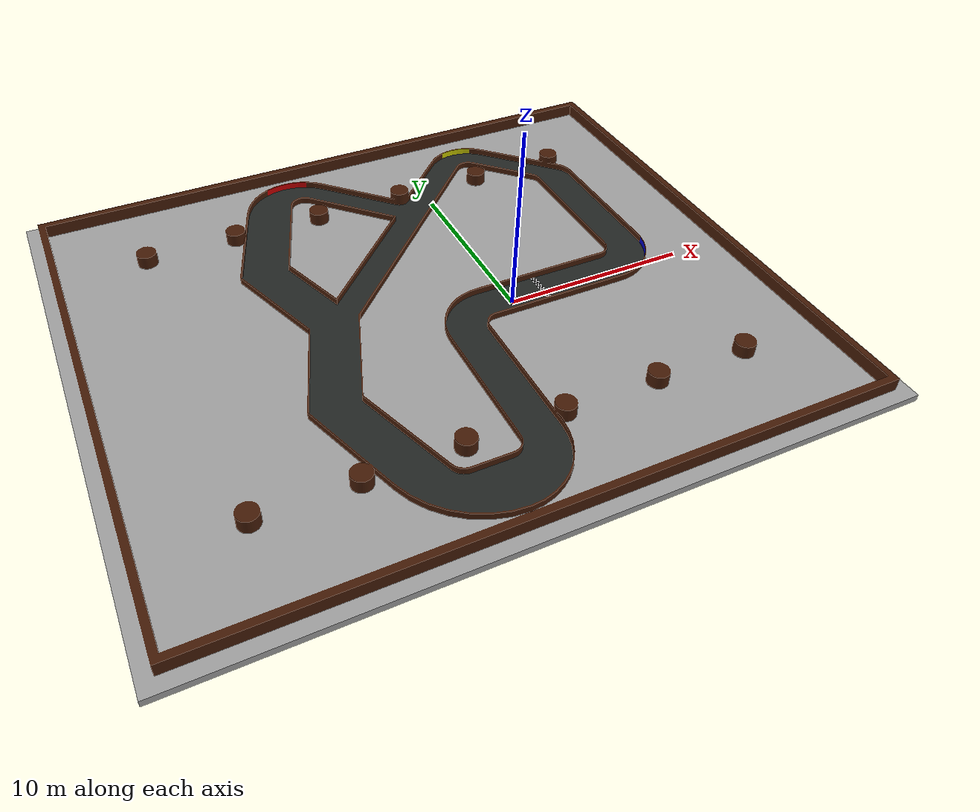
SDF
<?xml version="1.0"?>
<sdf version="1.4">
<world name="racecar_walker">

  <scene>
    <ambient>0.5 0.5 0.5 1.0</ambient>
    <shadows>0</shadows>
  </scene>

  <light type="point" name="Light 1">
              <pose>0 0 15 0 0 0</pose>
              <diffuse>.9 .9 .9 1</diffuse>
              <specular>.1 .1 .1 1</specular>
              <attenuation>
              <constant>0.5</constant>
              <linear>0.01</linear>
              <quadratic>0.0</quadratic>
              <range>50</range>
              </attenuation>
              <direction>0 0 -1</direction>
              <cast_shadows>false</cast_shadows>
          </light>

  <include>
    <uri>model://racecar_gazebo/models/walker_racecourse</uri>
    <pose>-4 2 -.3583 0 0 -1.57</pose>
    <name>walker_racecourse</name>
  </include>

</world>
</sdf>

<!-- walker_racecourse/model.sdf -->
<sdf version='1.4'>
  <model name="walker_racecourse">
    <link name="link">
      <collision name="collision">
        <geometry>
          <mesh>
            <uri>model://racecar_gazebo/meshes/walker_racecourse.dae</uri>
          </mesh>
        </geometry>
      </collision>
      <visual name="visual">
        <geometry>
          <mesh>
            <uri>model://racecar_gazebo/meshes/walker_racecourse.dae</uri>
          </mesh>
        </geometry>
      </visual>
    </link>
    <static>1</static>
  </model>
</sdf>
